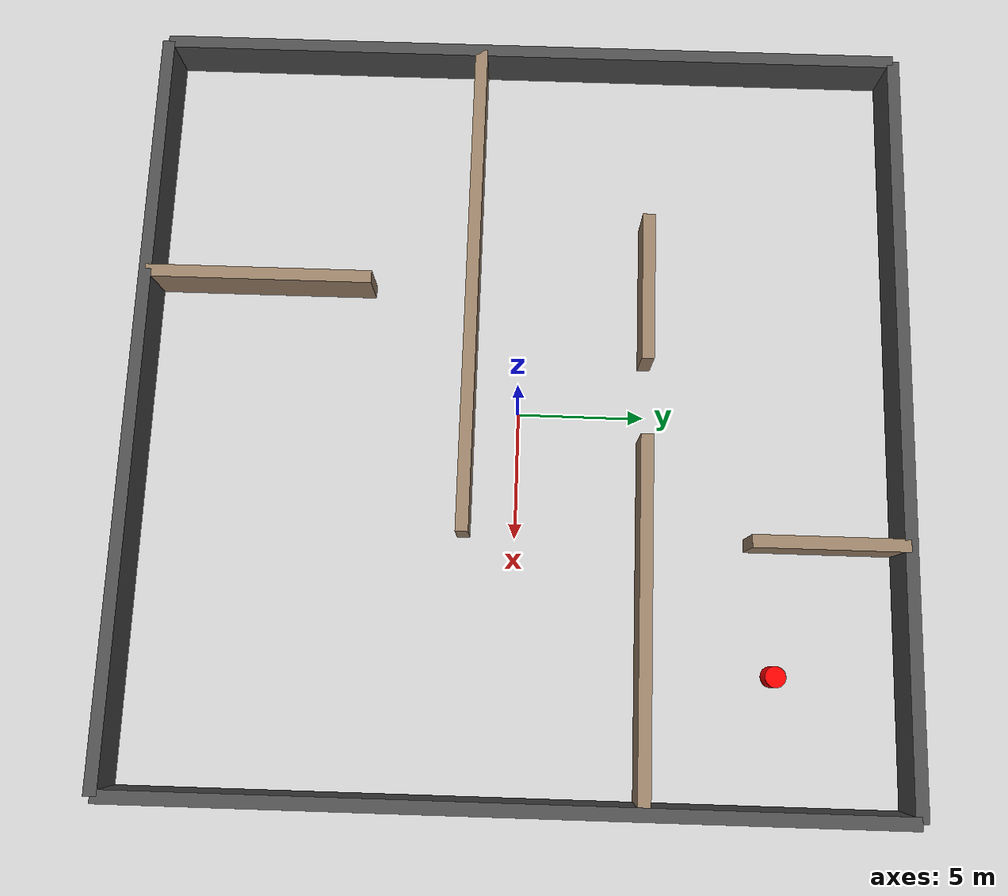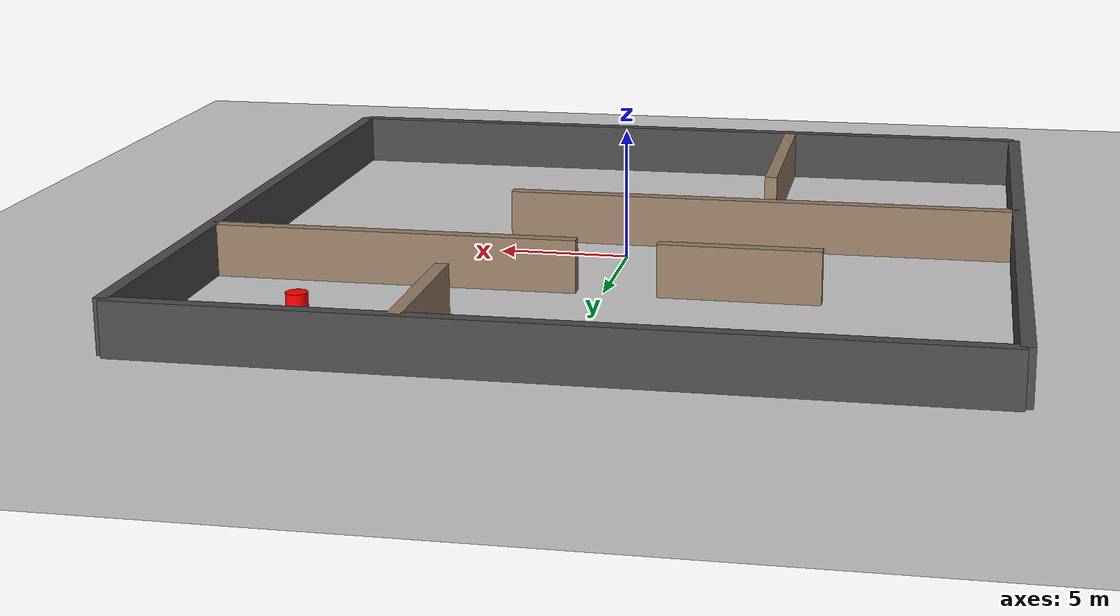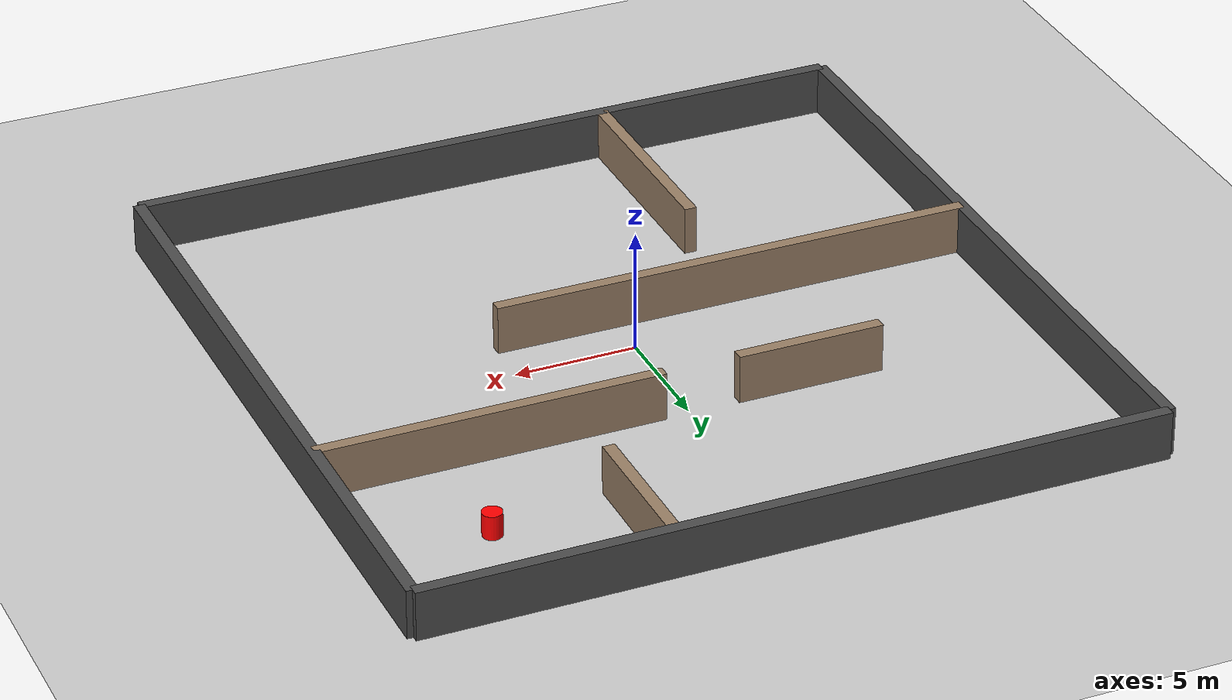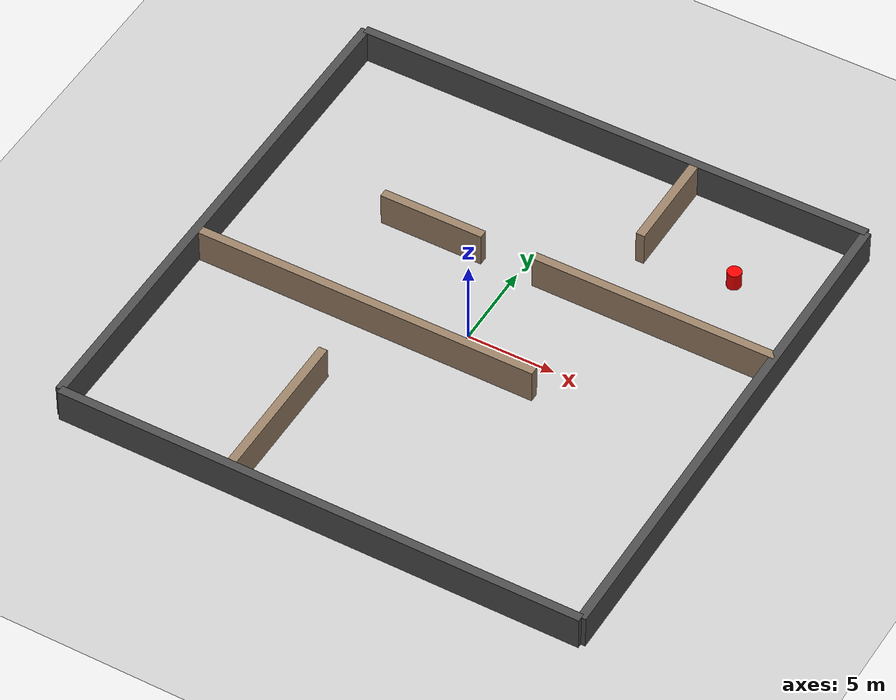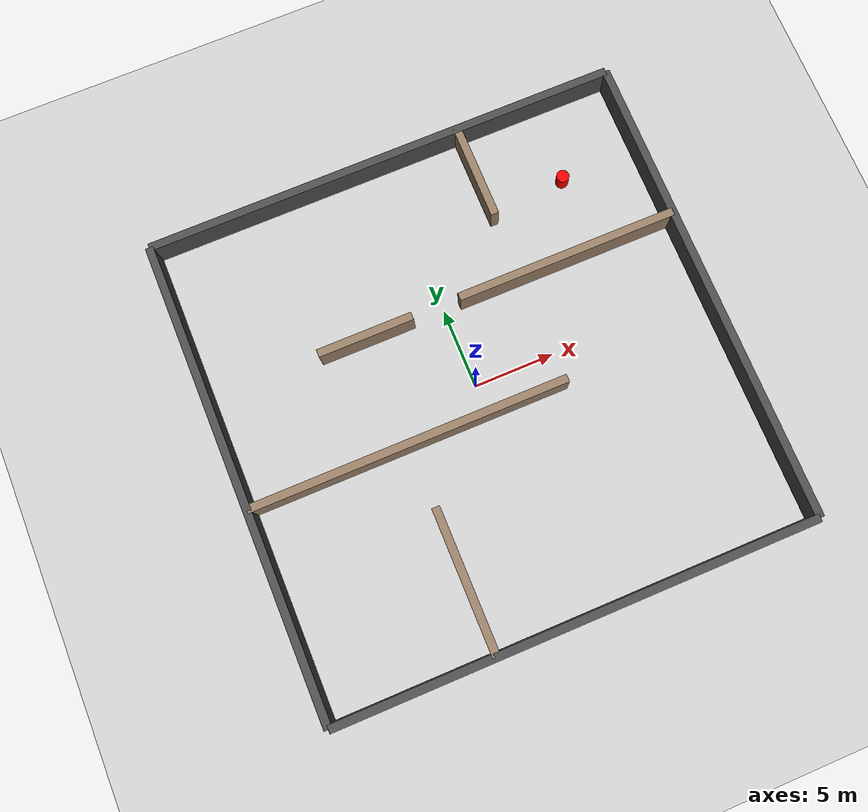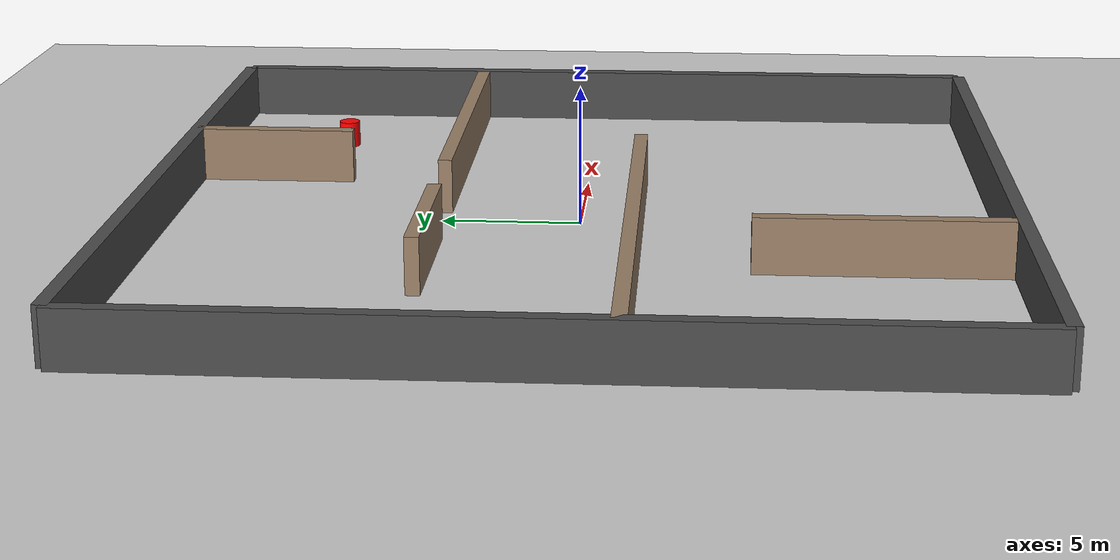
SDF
<sdf version="1.8">
 <world name="complex_warehouse">
  <physics name="1ms" type="ignored">
   <max_step_size>0.001</max_step_size>
   <real_time_factor>1</real_time_factor>
   <real_time_update_rate>1000</real_time_update_rate>
  </physics>
  <plugin name="gz::sim::systems::Physics" filename="gz-sim-physics-system"/>
  <plugin name="gz::sim::systems::UserCommands" filename="gz-sim-user-commands-system"/>
  <plugin name="gz::sim::systems::SceneBroadcaster" filename="gz-sim-scene-broadcaster-system"/>
  <plugin name="gz::sim::systems::Sensors" filename="gz-sim-sensors-system">
   <render_engine>ogre2</render_engine>
  </plugin>
  <gravity>0 0 -9.8000000000000007</gravity>
  <magnetic_field>5.5644999999999998e-06 2.2875799999999999e-05 -4.2388400000000002e-05</magnetic_field>
  <atmosphere type="adiabatic"/>
  <scene>
   <ambient>0.400000006 0.400000006 0.400000006 1</ambient>
   <background>0.699999988 0.699999988 0.699999988 1</background>
   <shadows>true</shadows>
  </scene>
  <model name="ground_plane">
   <static>true</static>
   <link name="link">
    <collision name="collision">
     <geometry><plane><normal>0 0 1</normal><size>100 100</size></plane></geometry>
    </collision>
    <visual name="visual">
     <geometry><plane><normal>0 0 1</normal><size>100 100</size></plane></geometry>
     <material>
      <ambient>0.800000012 0.800000012 0.800000012 1</ambient>
      <diffuse>0.800000012 0.800000012 0.800000012 1</diffuse>
     </material>
    </visual>
    <inertial>
     <mass>1</mass>
     <inertia><ixx>1</ixx><ixy>0</ixy><ixz>0</ixz><iyy>1</iyy><iyz>0</iyz><izz>1</izz></inertia>
    </inertial>
   </link>
  </model>
  <model name="outer_walls">
   <static>true</static>
   <link name="link">
    <visual name="v1">
     <pose>0 15 1 0 0 0</pose>
     <geometry><box><size>30 0.5 2</size></box></geometry>
     <material><ambient>0.300000012 0.300000012 0.300000012 1</ambient></material>
    </visual>
    <collision name="c1">
     <pose>0 15 1 0 0 0</pose>
     <geometry><box><size>30 0.5 2</size></box></geometry>
    </collision>
    <visual name="v2">
     <pose>0 -15 1 0 0 0</pose>
     <geometry><box><size>30 0.5 2</size></box></geometry>
     <material><ambient>0.300000012 0.300000012 0.300000012 1</ambient></material>
    </visual>
    <collision name="c2">
     <pose>0 -15 1 0 0 0</pose>
     <geometry><box><size>30 0.5 2</size></box></geometry>
    </collision>
    <visual name="v3">
     <pose>15 0 1 0 0 1.5708</pose>
     <geometry><box><size>30 0.5 2</size></box></geometry>
     <material><ambient>0.300000012 0.300000012 0.300000012 1</ambient></material>
    </visual>
    <collision name="c3">
     <pose>15 0 1 0 0 1.5708</pose>
     <geometry><box><size>30 0.5 2</size></box></geometry>
    </collision>
    <visual name="v4">
     <pose>-15 0 1 0 0 1.5708</pose>
     <geometry><box><size>30 0.5 2</size></box></geometry>
     <material><ambient>0.300000012 0.300000012 0.300000012 1</ambient></material>
    </visual>
    <collision name="c4">
     <pose>-15 0 1 0 0 1.5708</pose>
     <geometry><box><size>30 0.5 2</size></box></geometry>
    </collision>
    <inertial>
     <mass>1</mass>
     <inertia><ixx>1</ixx><ixy>0</ixy><ixz>0</ixz><iyy>1</iyy><iyz>0</iyz><izz>1</izz></inertia>
    </inertial>
   </link>
  </model>
  <model name="inner_walls">
   <static>true</static>
   <link name="link">
    <visual name="v1">
     <pose>-5 5 1 0 0 0</pose>
     <geometry><box><size>6 0.5 2</size></box></geometry>
     <material><ambient>0.600000024 0.5 0.400000006 1</ambient></material>
    </visual>
    <collision name="c1"><pose>-5 5 1 0 0 0</pose><geometry><box><size>6 0.5 2</size></box></geometry></collision>
    <visual name="v2">
     <pose>8 5 1 0 0 0</pose>
     <geometry><box><size>14 0.5 2</size></box></geometry>
     <material><ambient>0.600000024 0.5 0.400000006 1</ambient></material>
    </visual>
    <collision name="c2"><pose>8 5 1 0 0 0</pose><geometry><box><size>14 0.5 2</size></box></geometry></collision>
    <visual name="v3">
     <pose>-5 -2 1 0 0 0</pose>
     <geometry><box><size>20 0.5 2</size></box></geometry>
     <material><ambient>0.600000024 0.5 0.400000006 1</ambient></material>
    </visual>
    <collision name="c3">
     <pose>-5 -2 1 0 0 0</pose>
     <geometry><box><size>20 0.5 2</size></box></geometry>
    </collision>
    <visual name="v4">
     <pose>5 12 1 0 0 1.5708</pose>
     <geometry><box><size>6 0.5 2</size></box></geometry>
     <material><ambient>0.600000024 0.5 0.400000006 1</ambient></material>
    </visual>
    <collision name="c4">
     <pose>5 12 1 0 0 1.5708</pose>
     <geometry><box><size>6 0.5 2</size></box></geometry>
    </collision>
    <visual name="v5">
     <pose>-5 -10.5 1 0 0 1.5708</pose>
     <geometry><box><size>9 0.5 2</size></box></geometry>
     <material><ambient>0.600000024 0.5 0.400000006 1</ambient></material>
    </visual>
    <collision name="c5">
     <pose>-5 -10.5 1 0 0 1.5708</pose>
     <geometry><box><size>9 0.5 2</size></box></geometry>
    </collision>
    <inertial>
     <mass>1</mass>
     <inertia><ixx>1</ixx><ixy>0</ixy><ixz>0</ixz><iyy>1</iyy><iyz>0</iyz><izz>1</izz></inertia>
    </inertial>
   </link>
  </model>
  <model name="red_cylinder">
   <static>true</static>
   <pose>10 10 0.5 0 0 0</pose>
   <link name="link">
    <collision name="collision">
     <geometry><cylinder><radius>0.40000000000000002</radius><length>1</length></cylinder></geometry>
    </collision>
    <visual name="visual">
     <geometry><cylinder><radius>0.40000000000000002</radius><length>1</length></cylinder></geometry>
     <material><ambient>1 0 0 1</ambient><diffuse>1 0 0 1</diffuse></material>
    </visual>
    <inertial>
     <mass>1</mass>
     <inertia><ixx>1</ixx><ixy>0</ixy><ixz>0</ixz><iyy>1</iyy><iyz>0</iyz><izz>1</izz></inertia>
    </inertial>
   </link>
  </model>
  <light name="directionallight" type="directional">
   <pose>0.75546774503602387 -0.25633707320487176 2 0 0 0</pose>
   <intensity>1</intensity>
   <direction>0 0 -1</direction>
   <diffuse>0.800000012 0.800000012 0.800000012 1</diffuse>
   <specular>0.200000003 0.200000003 0.200000003 1</specular>
   <attenuation>
    <range>1000</range>
    <linear>0.01</linear>
    <constant>0.90000000000000002</constant>
    <quadratic>0.001</quadratic>
   </attenuation>
   <spot><inner_angle>0</inner_angle><outer_angle>0</outer_angle><falloff>0</falloff></spot>
  </light>
 </world>
</sdf>
